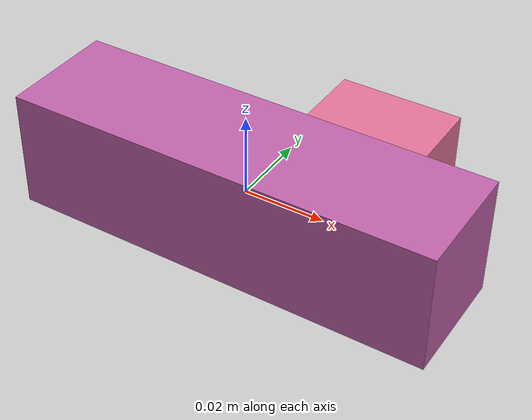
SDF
<sdf version="1.4"><world name="default"><model name="object0"><link name="link1"><pose>0 0 0 0 0 0</pose><inertial><pose>0 0 0 0 0 0</pose><mass>0.057738721227571954</mass><inertia><ixx>8.660808184135793e-06</ixx><ixy>0</ixy><iyy>5.933927331357792e-05</iyy><ixz>0</ixz><iyz>0</iyz><izz>5.933927331357792e-05</izz></inertia></inertial><visual name="link1_visual"><pose>0 0  0 0 0 0</pose><geometry><box><size>0.10692355782883696 0.03 0.03</size></box></geometry><material><diffuse>0.7518750845041033 0.38457512022926854 0.6646258449575598 1</diffuse></material></visual><collision><pose>0 0  0 0 0 0</pose><geometry><box><size>0.10692355782883696 0.03 0.03</size></box></geometry></collision></link><link name="link2"><pose>0.02145937132514647 0.012446588720027352 0 0 0 0</pose><inertial><pose>0 0 0 0 0 0</pose><mass>0.02237848613338088</mass><inertia><ixx>4.771111160891404e-06</ixx><ixy>0</ixy><iyy>3.2467453631846757e-06</iyy><ixz>0</ixz><iyz>0</iyz><izz>4.881138717713859e-06</izz></inertia></inertial><visual name="link2_visual"><pose>0 0  0 0 0 0</pose><geometry><box><size>0.03 0.041441640987742376 0.028999999999999998</size></box></geometry><material><diffuse>0.8821470801507105 0.4500726974159849 0.5925176856539758 1</diffuse></material></visual><collision><pose>0 0  0 0 0 0</pose><geometry><box><size>0.03 0.041441640987742376 0.028999999999999998</size></box></geometry></collision></link><joint name="link_joint_0" type="fixed"><parent>link1</parent><child>link2</child><pose>0 0 0 0 0 0</pose><axis><xyz>0 0 1</xyz></axis></joint></model></world></sdf>
